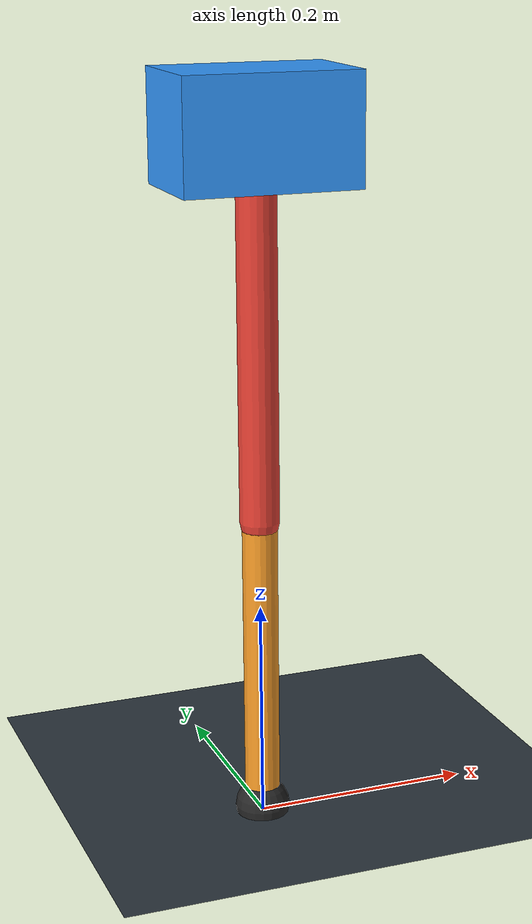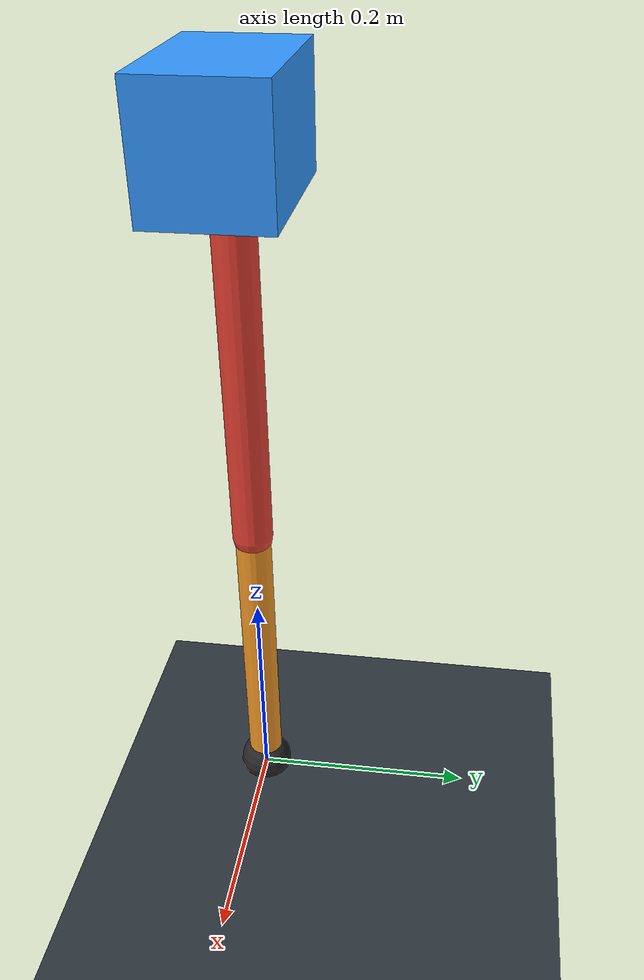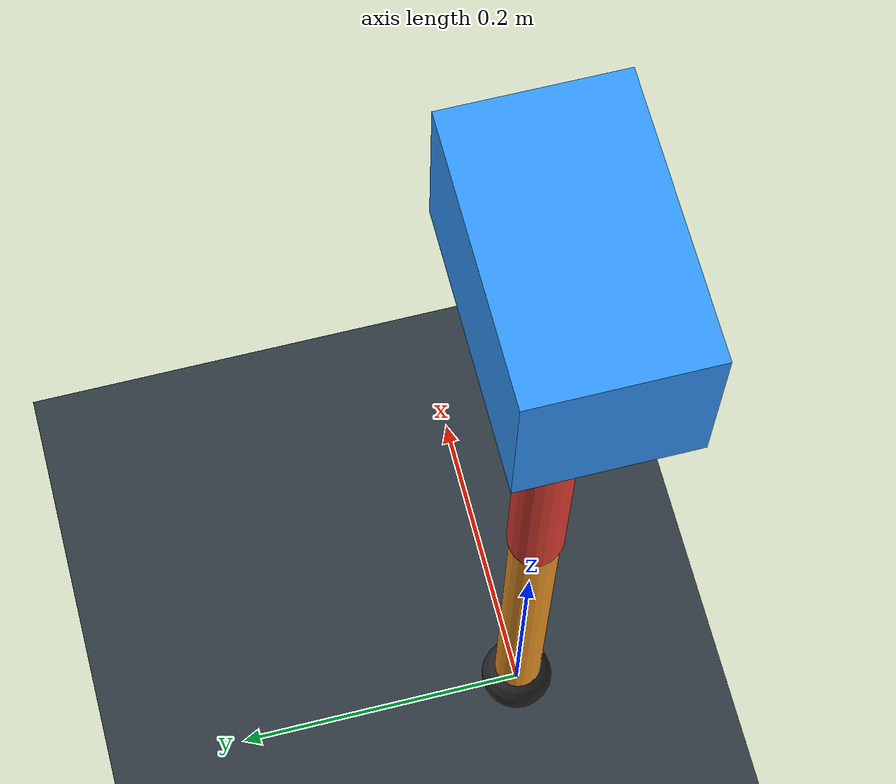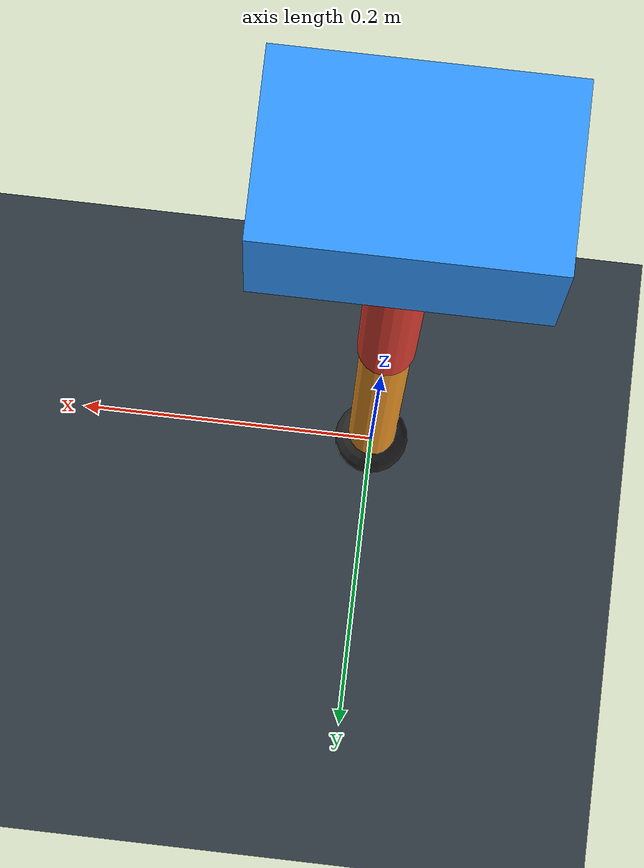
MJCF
<mujoco model="single_axis_two_bar">
  <compiler angle="radian" inertiafromgeom="true"/>
  <option timestep="0.001" integrator="implicitfast" gravity="0 0 -9.81"/>
  <default>
    <joint damping="0.08"/>
    <geom friction="1.2 0.01 0.0001" condim="3"/>
  </default>
  <worldbody>
    <geom name="floor" type="plane" size="5 5 0.1" rgba="0.18 0.22 0.25 1"/>
    <body name="carriage" pos="0 0 0.6319493139166864">
      <joint name="pole_slide" type="slide" axis="0 0 1"/>
      <geom name="payload" type="box" size="0.08 0.05 0.05" mass="2.362993948885191" rgba="0.2 0.6 1 1"/>
      <body name="thigh" pos="0 0 0">
        <joint name="hip" type="hinge" axis="0 1 0"/>
        <geom name="thigh_link" type="capsule" fromto="0 0 0 0 0 -0.34993794960084906" size="0.018" mass="0.24933541311263901" rgba="0.9 0.25 0.2 1"/>
        <body name="shank" pos="0 0 -0.34993794960084906">
          <joint name="knee" type="hinge" axis="0 1 0"/>
          <geom name="shank_link" type="capsule" fromto="0 0 0 0 0 -0.27578299258130184" size="0.016" mass="0.19649902636490707" rgba="0.95 0.6 0.15 1"/>
          <geom name="foot" type="sphere" pos="0 0 -0.27578299258130184" size="0.025" mass="0.03" rgba="0.15 0.15 0.15 1"/>
          <site name="toe" pos="0 0 -0.27578299258130184" size="0.008"/>
        </body>
      </body>
    </body>
  </worldbody>
  <actuator>
    <motor name="hip_motor" joint="hip" ctrlrange="-30.670786923278705 30.670786923278705"/>
    <motor name="knee_motor" joint="knee" ctrlrange="-97.11715977181746 97.11715977181746"/>
  </actuator>
</mujoco>
